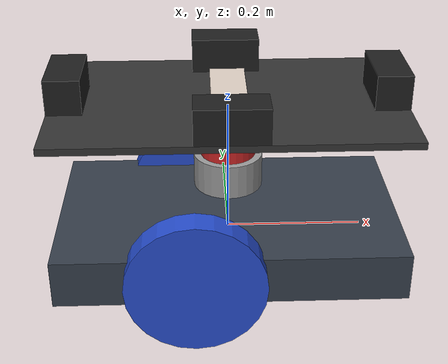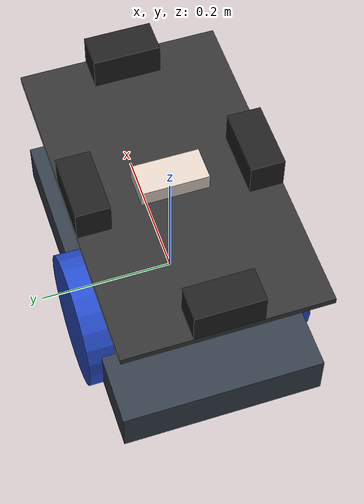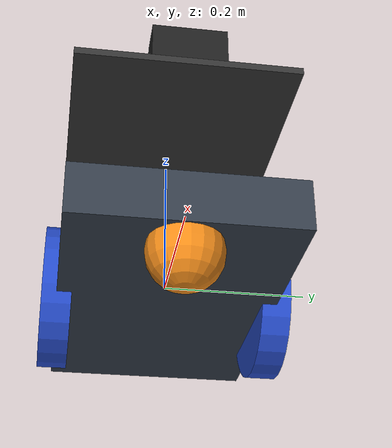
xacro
<?xml version='1.0'?>
<robot name="mybot" xmlns:xacro="http://www.ros.org/wiki/xacro">

  <xacro:property name="package_name" value="mybot_description"/>
  <xacro:property name="robot_name" value="mybot"/>
  <xacro:property name="lidar_base_radius" value="0.05"/>
  <xacro:property name="lidar_base_height" value="0.05"/>
  <xacro:property name="laz_radius" value="0.04"/>
  <xacro:property name="laz_height" value="0.1"/>

  <xacro:include filename="$(find ${package_name})/urdf/mybot.gazebo.xacro" />
  <xacro:include filename="$(find ${package_name})/urdf/materials.xacro" />
  <xacro:include filename="$(find ${package_name})/urdf/macros.xacro" />

  <link name="link_chassis">
    <!-- pose and inertial -->
    <pose>0 0 0.1 0 0 0</pose>

    <inertial>
      <mass value="5"/>
      <origin rpy="0 0 0" xyz="0 0 0.1"/>
      <inertia
        ixx="0.0395416666667" ixy="0" ixz="0"
        iyy="0.106208333333" iyz="0" izz="0.106208333333"/>
    </inertial>

    <!-- body -->
    <collision name="collision_chassis">
      <geometry>
        <box size="0.5 0.3 0.07"/>
      </geometry>
    </collision>

    <visual>
      <origin rpy="0 0 0" xyz="0 0 0"/>
      <geometry>
        <box size="0.5 0.3 0.07"/>
      </geometry>
      <material name="blue"/>
    </visual>

    <!-- spherical caster in body front -->
    <collision name="caster_collision">
      <origin rpy=" 0 0 0" xyz="0.35 0 -0.05"/>
      <geometry>
        <sphere radius="0.05"/>
      </geometry>
      <surface>
        <friction>
          <ode>
            <mu>0</mu>
            <mu2>0</mu2>
            <slip1>1.0</slip1>
            <slip2>1.0</slip2>
          </ode>
        </friction>
      </surface>
    </collision>

    <visual name="caster_visual">
      <origin rpy=" 0 0 0" xyz="0.2 0 -0.05"/>
      <geometry>
        <sphere radius="0.05"/>
      </geometry>
    </visual>
  </link>

  <!-- Use macros to define links, joints, and trasmission for rear wheels
       Note: transmission is what makes wheels controllable-->
  <xacro:link_wheel name="link_right_wheel" />
  <xacro:joint_wheel name="joint_right_wheel" child="link_right_wheel" origin_xyz="-0.05 0.15 0" />
  <xacro:trans_wheel name="transmission_right_wheel" joint="joint_right_wheel"/>

  <xacro:link_wheel name="link_left_wheel" />
  <xacro:joint_wheel name="joint_left_wheel" child="link_left_wheel" origin_xyz="-0.05 -0.15 0" />
  <xacro:trans_wheel name="transmission_left_wheel" joint="joint_left_wheel"/>

  <!-- controller requires an extra dummy link that nulls the inertia -->
  <link name="dummy">
  </link>
  <joint name="dummy_joint" type="fixed">
     <parent link="dummy"/>
     <child link="link_chassis"/>
   </joint>

<!-- Define sensors and attach them to the vehicle chassis -->

<!-- =============================== LIDAR =============================== -->
  <link name="laz_base">
    <visual>
      <geometry>
        <cylinder length="${lidar_base_height}" radius="${lidar_base_radius}"/>
      </geometry>
    </visual>

    <collision>
      <geometry>
        <cylinder length="${lidar_base_height}" radius="${lidar_base_radius}"/>
      </geometry>
    </collision>

    <inertial>
      <mass value="0.1"/>
      <inertia ixx="${(1/12) * 0.1 * (3 * lidar_base_radius * lidar_base_radius + lidar_base_height * lidar_base_height)}" ixy="0" ixz="0" iyy="${(1/12) * 0.1 * (3 * lidar_base_radius * lidar_base_radius + lidar_base_height * lidar_base_height)}" iyz="0" izz="${(1/2) * 0.1 * lidar_base_radius * lidar_base_radius}"/>
    </inertial>
  </link>

  <link name="laz_rot">
    <visual>
      <geometry>
        <cylinder length="${laz_height}" radius="${laz_radius}"/>
      </geometry>
    </visual>

    <collision>
      <geometry>
        <cylinder length="${laz_height}" radius="${laz_radius}"/>
      </geometry>
    </collision>

    <inertial>
      <mass value="0.1"/>
      <inertia ixx="${(1/12) * 0.1 * (3 * laz_radius * laz_radius + laz_height * laz_height)}" ixy="0" ixz="0" iyy="${(1/12) * 0.1 * (3 * laz_radius * laz_radius + laz_height * laz_height)}" iyz="0" izz="${(1/2) * 0.1 * laz_radius * laz_radius}"/>
    </inertial>
  </link>

  <joint name="lazRot" type="fixed">
    <parent link="laz_base"/>
    <child link="laz_rot"/>
    <origin xyz = "0 0 ${lidar_base_height/2}"/>
  </joint>

  <!-- Attach Lidar to the Vehicle Body -->
  <joint name="lidar_joint" type="fixed">
    <origin xyz="0 0 0.1" rpy="0 0 0"/>
    <parent link="link_chassis"/>
    <child link="laz_base"/>
  </joint>

<!-- =============================== Cameras =============================== -->
  <!-- Make a simple base for the cameras to sit on -->
  <link name="camera_base">
    <collision>
      <geometry>
        <box size="0.5 0.3 0.01"/>
      </geometry>
    </collision>

    <visual>
      <geometry>
        <box size="0.5 0.3 0.01"/>
      </geometry>
      <material name="grey"/>
    </visual>
  </link>

  <joint name="camera_base_joint" type="fixed">
    <origin xyz="0 0 0.205" rpy="0 0 0"/>
    <parent link="link_chassis"/>
    <child link="camera_base"/>
  </joint>

  <!-- Use macros to define links and joints for all four cameras -->
  <xacro:link_camera name="link_front_camera" direction_rpy="0 0 0" />
  <xacro:joint_camera name="joint_front_camera" child="link_front_camera" origin_xyz="0.225 0 0.235" />

  <xacro:link_camera name="link_right_camera" direction_rpy="0 0 -1.5707" />
  <xacro:joint_camera name="joint_right_camera" child="link_right_camera" origin_xyz="0 -0.125 0.235" />

  <xacro:link_camera name="link_left_camera" direction_rpy="0 0 1.5707"  />
  <xacro:joint_camera name="joint_left_camera" child="link_left_camera" origin_xyz="0 0.125 0.235" />

  <xacro:link_camera name="link_rear_camera" direction_rpy="0 0 ${pi}" />
  <xacro:joint_camera name="joint_rear_camera" child="link_rear_camera" origin_xyz="-0.225 0 0.235" />

<!-- =============================== Inertial Measurement Unit (IMU) =============================== -->
  <link name="link_imu">
    <collision>
      <geometry>
        <box size="0.05 0.1 0.025"/>
      </geometry>
    </collision>

    <visual>
      <geometry>
        <box size="0.05 0.1 0.025"/>
      </geometry>
      <material name="brown"/>
    </visual>
  </link>

  <joint name="joint_imu" type="fixed">
    <origin xyz="0 0 0.2225" rpy="0 0 0"/>
    <parent link="link_chassis"/>
    <child link="link_imu"/>
  </joint>

</robot>

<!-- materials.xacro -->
<robot xmlns:xacro="http://ros.org/wiki/xacro">

  <material name="black">
    <color rgba="0.0 0.0 0.0 1.0"/>
  </material>
  <material name="blue">
    <color rgba="0.203125 0.23828125 0.28515625 1.0"/>
  </material>
  <material name="green">
    <color rgba="0.0 0.8 0.0 1.0"/>
  </material>
  <material name="grey">
    <color rgba="0.2 0.2 0.2 1.0"/>
  </material>
  <material name="orange">
    <color rgba="1.0 0.423529411765 0.0392156862745 1.0"/>
  </material>
  <material name="brown">
    <color rgba="0.870588235294 0.811764705882 0.764705882353 1.0"/>
  </material>
  <material name="red">
    <color rgba="0.80078125 0.12890625 0.1328125 1.0"/>
  </material>
  <material name="white">
    <color rgba="1.0 1.0 1.0 1.0"/>
  </material>

</robot>

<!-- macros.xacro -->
<robot xmlns:xacro="http://ros.org/wiki/xacro">

  <!-- Robot Wheel -->
  <xacro:macro name="link_wheel" params="name">
    <link name="${name}">
      <inertial>
        <mass value="0.2"/>
        <origin rpy="0 1.5707 1.5707" xyz="0 0 0"/>
        <inertia ixx="0.000526666666667" ixy="0" ixz="0"
                       iyy="0.000526666666667" iyz="0" izz="0.001"/>
      </inertial>
      <collision name="${name}_collision">
        <origin rpy="0 1.5707 1.5707" xyz="0 0 0"/>
        <geometry>
          <cylinder length="0.04" radius="0.1"/>
        </geometry>
      </collision>
      <visual name="${name}_visual">
        <origin rpy="0 1.5707 1.5707" xyz="0 0 0"/>
        <geometry>
          <cylinder length="0.04" radius="0.1"/>
        </geometry>
      </visual>
    </link>
  </xacro:macro>

  <xacro:macro name="joint_wheel" params="name child origin_xyz">
    <joint name="${name}" type="continuous">
      <origin rpy="0 0 0" xyz="${origin_xyz}"/>
      <child link="${child}"/>
      <parent link="link_chassis"/>
      <axis rpy="0 0 0" xyz="0 1 0"/>
      <limit effort="10000" velocity="1000"/>
      <joint_properties damping="1.0" friction="1.0"/>
    </joint>
  </xacro:macro>

  <xacro:macro name="trans_wheel" params="name joint">
    <transmission name="${name}">
      <type>transmission_interface/SimpleTransmission</type>
      <joint name="${joint}">
        <hardwareInterface>hardware_interface/VelocityJointInterface</hardwareInterface>
      </joint>
      <actuator name="${name}_actuator">
        <mechanicalReduction>7</mechanicalReduction>
        <hardwareInterface>VelocityJointInterface</hardwareInterface>
      </actuator>
    </transmission>
  </xacro:macro>

  <!-- Stereo Camera -->
  <xacro:macro name="link_camera" params="name direction_rpy">
    <link name="${name}">
      <inertial>
        <mass value="0.1"/>
        <origin rpy="${direction_rpy}" xyz="0 0 0"/>
        <box_inertia m="0.1" x="0.05" y="0.05" z="0.05" />
        <inertia ixx="1e-6" ixy="0" ixz="0"
                 iyy="1e-6" iyz="0" izz="1e-6"/>
      </inertial>
      <collision name="${name}_collision">
        <origin rpy="${direction_rpy}" xyz="0 0 0"/>
        <geometry>
          <box size="0.05 0.05 0.05" />
        </geometry>
      </collision>
      <visual name="${name}_visual">
        <origin rpy="${direction_rpy}" xyz="0 0 0"/>
        <geometry>
          <box size="0.05 0.1 0.05" />
        </geometry>
      </visual>
    </link>
  </xacro:macro>

  <xacro:macro name="joint_camera" params="name child origin_xyz">
    <joint name="${name}" type="fixed">
      <axis xyz="0 1 0"/>
      <origin rpy="0 0 0" xyz="${origin_xyz}"/>
      <child link="${child}"/>
      <parent link="link_chassis"/>
    </joint>
  </xacro:macro>

</robot>
